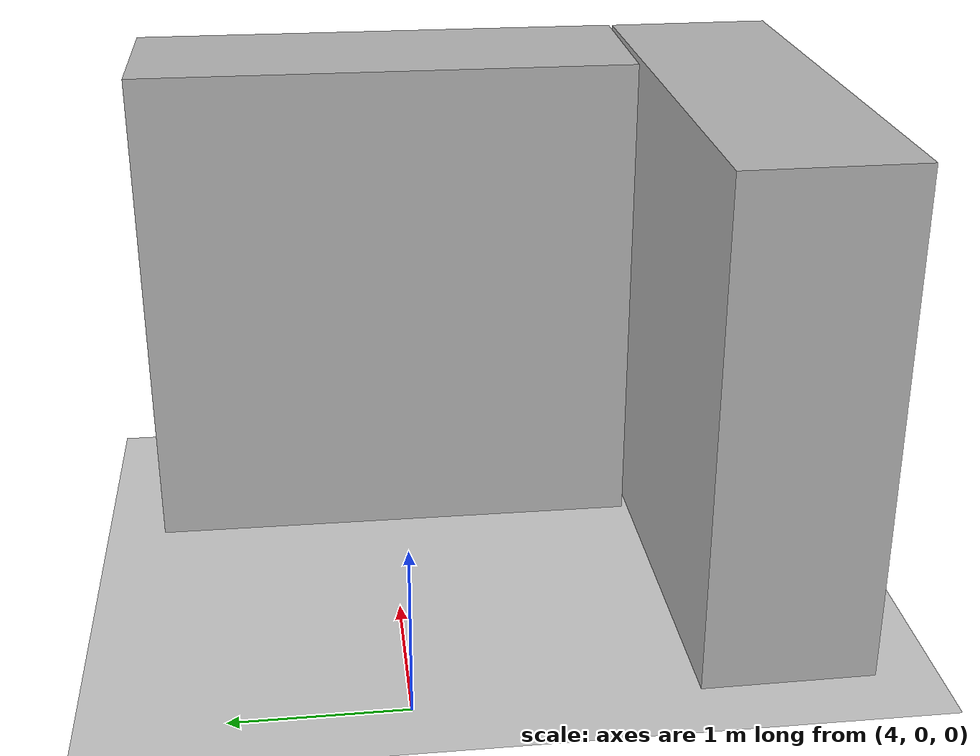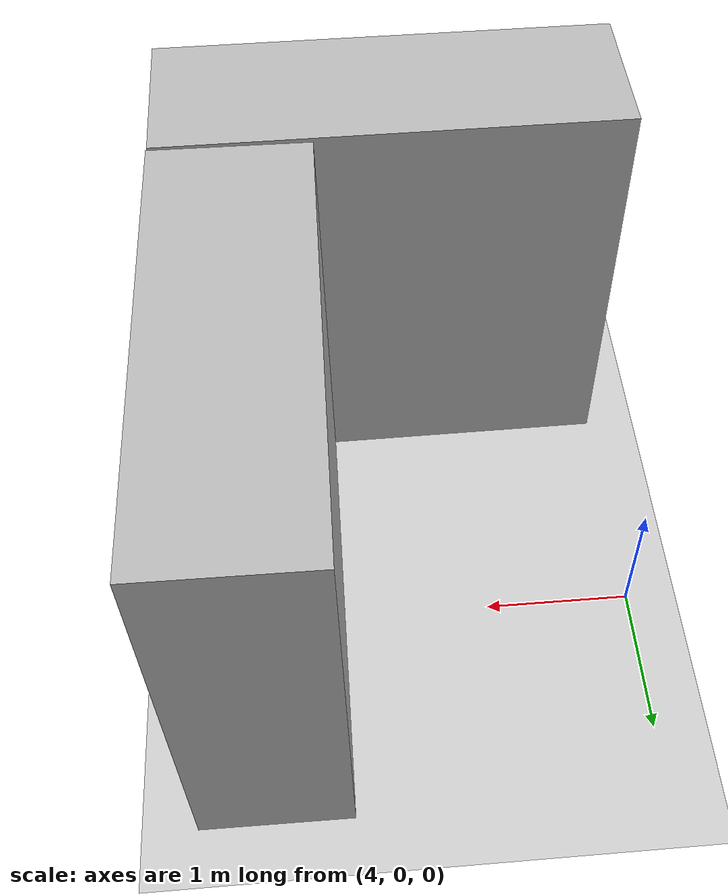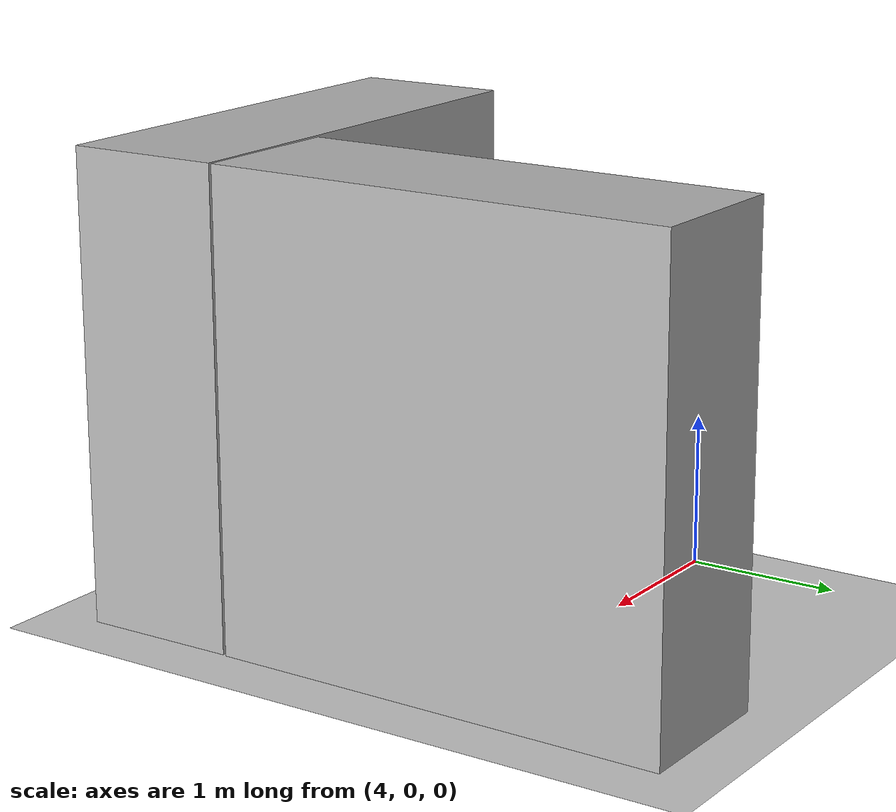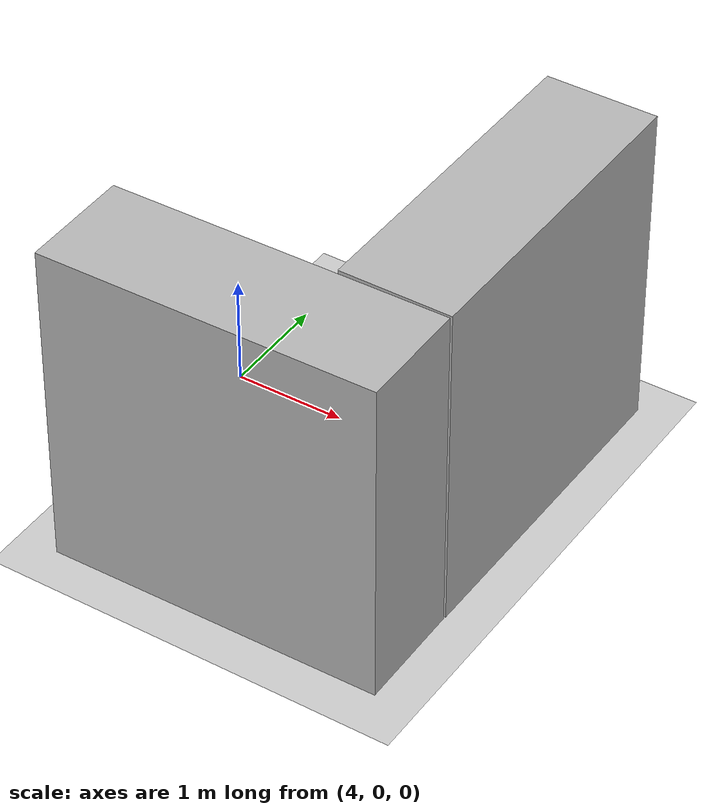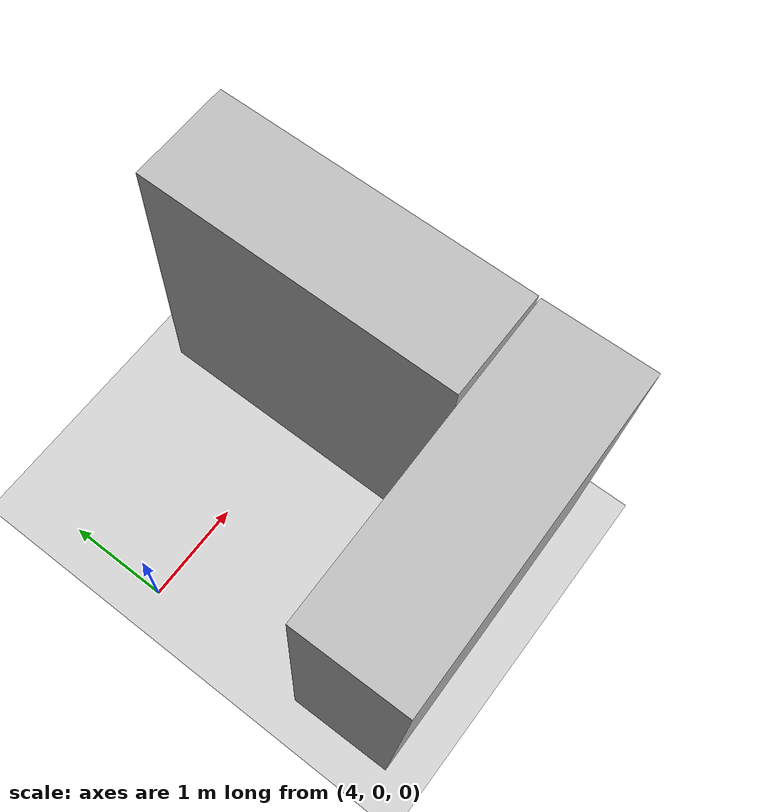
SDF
<sdf version="1.7">
 <world name="default">
  <light name="sun" type="directional">
   <pose>0 0 10 0 -0 0</pose>
   <diffuse>0.8 0.8 0.8 1</diffuse>
   <specular>0.2 0.2 0.2 1</specular>
   <attenuation>
    <range>1000</range>
    <constant>0.9</constant>
    <linear>0.01</linear>
    <quadratic>0.001</quadratic>
   </attenuation>
   <direction>-0.5 0.1 -0.9</direction>
   <spot><inner_angle>0</inner_angle><outer_angle>0</outer_angle><falloff>0</falloff></spot>
  </light>
  <model name="ground_plane">
   <static>1</static>
   <link name="link">
    <collision name="collision">
     <geometry><plane><normal>0 0 1</normal><size>100 100</size></plane></geometry>
     <surface>
      <contact><collide_bitmask>65535</collide_bitmask></contact>
      <friction><ode><mu>100</mu><mu2>50</mu2></ode></friction>
     </surface>
    </collision>
    <visual name="visual">
     <cast_shadows>0</cast_shadows>
     <geometry><plane><normal>0 0 1</normal><size>100 100</size></plane></geometry>
     <material>
      <script><uri>file://media/materials/scripts/gazebo.material</uri><name>Gazebo/Grey</name></script>
     </material>
    </visual>
   </link>
  </model>
  <gravity>0 0 -9.8</gravity>
  <magnetic_field>6e-06 2.3e-05 -4.2e-05</magnetic_field>
  <atmosphere type="adiabatic"/>
  <physics type="ode">
   <max_step_size>0.001</max_step_size>
   <real_time_factor>1</real_time_factor>
   <real_time_update_rate>1000</real_time_update_rate>
  </physics>
  <scene><ambient>0.4 0.4 0.4 1</ambient><background>0.7 0.7 0.7 1</background><shadows>1</shadows></scene>
  <audio><device>default</device></audio>
  <spherical_coordinates>
   <surface_model>EARTH_WGS84</surface_model>
   <latitude_deg>0</latitude_deg>
   <longitude_deg>0</longitude_deg>
   <elevation>0</elevation>
   <heading_deg>0</heading_deg>
  </spherical_coordinates>
  <model name="brick_box_3x1x3">
   <static>1</static>
   <link name="chassis">
    <pose>0 0 1.5 0 -0 0</pose>
    <collision name="collision"><geometry><box><size>3 1 3</size></box></geometry></collision>
    <visual name="visual">
     <geometry><mesh><uri>model://brick_box_3x1x3/meshes/simple_box.dae</uri><scale>3 1 3</scale></mesh></geometry>
     <material>
      <script>
       <uri>model://brick_box_3x1x3/materials/scripts</uri>
       <uri>model://brick_box_3x1x3/materials/textures</uri>
       <name>BrickBox/Diffuse</name>
      </script>
     </material>
    </visual>
   </link>
   <pose>6.5164 -0.047094 0 0 0 -1.57552</pose>
  </model>
  <model name="brick_box_3x1x3_clone">
   <static>1</static>
   <link name="chassis">
    <pose>0 0 1.5 0 -0 0</pose>
    <collision name="collision"><geometry><box><size>3 1 3</size></box></geometry></collision>
    <visual name="visual">
     <geometry><mesh><uri>model://brick_box_3x1x3/meshes/simple_box.dae</uri><scale>3 1 3</scale></mesh></geometry>
     <material>
      <script>
       <uri>model://brick_box_3x1x3/materials/scripts</uri>
       <uri>model://brick_box_3x1x3/materials/textures</uri>
       <name>BrickBox/Diffuse</name>
      </script>
     </material>
    </visual>
   </link>
   <pose>5.50883 -2.08545 0 0 0 -3.13206</pose>
  </model>
 </world>
</sdf>
